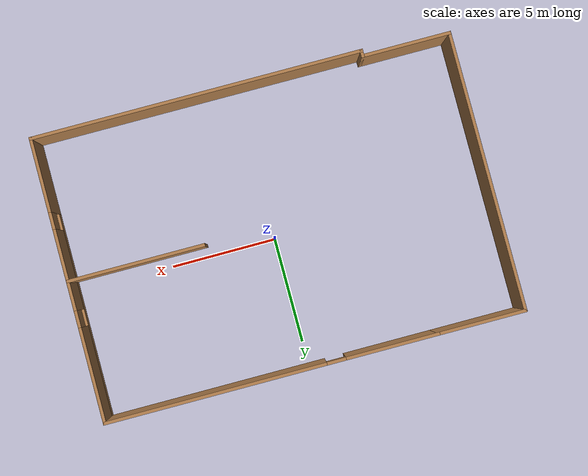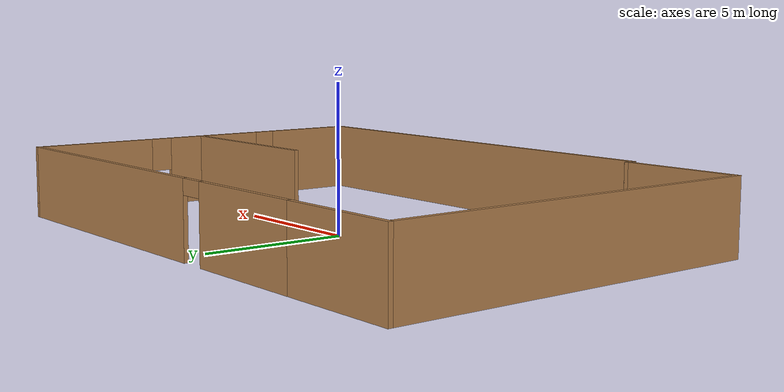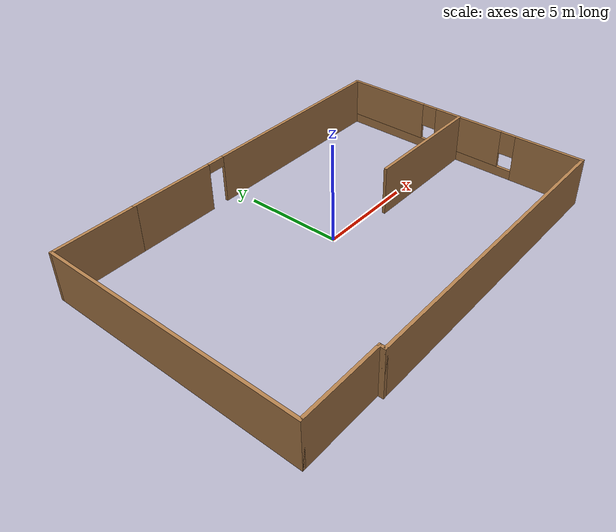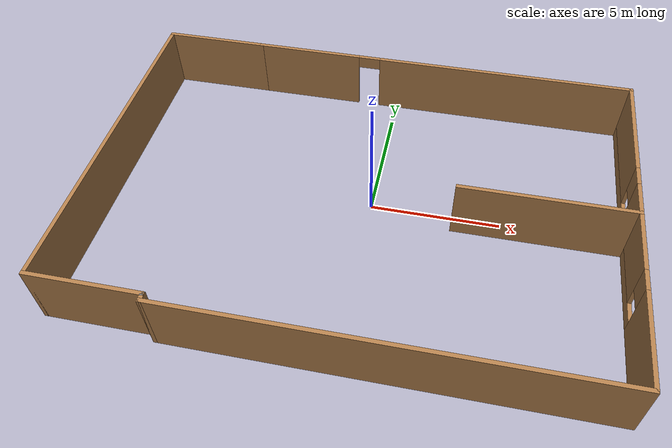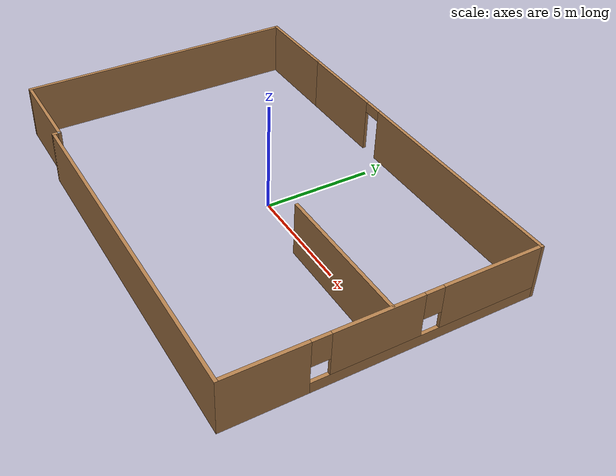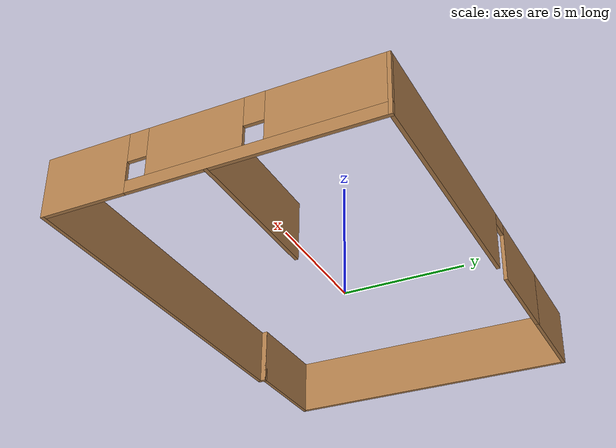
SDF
<?xml version='1.0'?>
<sdf version='1.7'>
  <model name='room2'>
    <pose>-0.266014 -0.572927 0 0 -0 0</pose>
    <link name='Wall_0'>
      <collision name='Wall_0_Collision'>
        <geometry>
          <box>
            <size>15.75 0.15 2.5</size>
          </box>
        </geometry>
        <pose>0 0 1.25 0 -0 0</pose>
      </collision>
      <visual name='Wall_0_Visual'>
        <pose>0 0 1.25 0 -0 0</pose>
        <geometry>
          <box>
            <size>15.75 0.15 2.5</size>
          </box>
        </geometry>
        <material>
          <script>
            <uri>file://media/materials/scripts/gazebo.material</uri>
            <name>Gazebo/Wood</name>
          </script>
          <ambient>1 1 1 1</ambient>
        </material>
        <meta>
          <layer>0</layer>
        </meta>
      </visual>
      <pose>2.05 -6.675 0 0 -0 0</pose>
    </link>
    <link name='Wall_1'>
      <pose>9.85 0 0 0 -0 1.5708</pose>
      <visual name='Wall_1_Visual_0'>
        <pose>-4.97454 0 1.25 0 -0 0</pose>
        <geometry>
          <box>
            <size>3.55091 0.15 2.5</size>
          </box>
        </geometry>
        <material>
          <script>
            <uri>file://media/materials/scripts/gazebo.material</uri>
            <name>Gazebo/Wood</name>
          </script>
          <ambient>1 1 1 1</ambient>
        </material>
        <meta>
          <layer>0</layer>
        </meta>
      </visual>
      <collision name='Wall_1_Collision_0'>
        <geometry>
          <box>
            <size>3.55091 0.15 2.5</size>
          </box>
        </geometry>
        <pose>-4.97454 0 1.25 0 -0 0</pose>
      </collision>
      <visual name='Wall_1_Visual_1'>
        <pose>1.77546 0 0.25 0 -0 0</pose>
        <geometry>
          <box>
            <size>9.94909 0.15 0.5</size>
          </box>
        </geometry>
        <material>
          <script>
            <uri>file://media/materials/scripts/gazebo.material</uri>
            <name>Gazebo/Wood</name>
          </script>
          <ambient>1 1 1 1</ambient>
        </material>
        <meta>
          <layer>0</layer>
        </meta>
      </visual>
      <collision name='Wall_1_Collision_1'>
        <geometry>
          <box>
            <size>9.94909 0.15 0.5</size>
          </box>
        </geometry>
        <pose>1.77546 0 0.25 0 -0 0</pose>
      </collision>
      <visual name='Wall_1_Visual_2'>
        <pose>-0.489522 0 1.5 0 -0 0</pose>
        <geometry>
          <box>
            <size>3.81913 0.15 2</size>
          </box>
        </geometry>
        <material>
          <script>
            <uri>file://media/materials/scripts/gazebo.material</uri>
            <name>Gazebo/Wood</name>
          </script>
          <ambient>1 1 1 1</ambient>
        </material>
        <meta>
          <layer>0</layer>
        </meta>
      </visual>
      <collision name='Wall_1_Collision_2'>
        <geometry>
          <box>
            <size>3.81913 0.15 2</size>
          </box>
        </geometry>
        <pose>-0.489522 0 1.5 0 -0 0</pose>
      </collision>
      <visual name='Wall_1_Visual_3'>
        <pose>4.48502 0 1.5 0 -0 0</pose>
        <geometry>
          <box>
            <size>4.52996 0.15 2</size>
          </box>
        </geometry>
        <material>
          <script>
            <uri>file://media/materials/scripts/gazebo.material</uri>
            <name>Gazebo/Wood</name>
          </script>
          <ambient>1 1 1 1</ambient>
        </material>
        <meta>
          <layer>0</layer>
        </meta>
      </visual>
      <collision name='Wall_1_Collision_3'>
        <geometry>
          <box>
            <size>4.52996 0.15 2</size>
          </box>
        </geometry>
        <pose>4.48502 0 1.5 0 -0 0</pose>
      </collision>
      <visual name='Wall_1_Visual_4'>
        <pose>-2.79908 0 1.9 0 -0 0</pose>
        <geometry>
          <box>
            <size>0.8 0.15 1.2</size>
          </box>
        </geometry>
        <material>
          <script>
            <uri>file://media/materials/scripts/gazebo.material</uri>
            <name>Gazebo/Wood</name>
          </script>
          <ambient>1 1 1 1</ambient>
        </material>
        <meta>
          <layer>0</layer>
        </meta>
      </visual>
      <collision name='Wall_1_Collision_4'>
        <geometry>
          <box>
            <size>0.8 0.15 1.2</size>
          </box>
        </geometry>
        <pose>-2.79908 0 1.9 0 -0 0</pose>
      </collision>
      <visual name='Wall_1_Visual_5'>
        <pose>1.82004 0 1.9 0 -0 0</pose>
        <geometry>
          <box>
            <size>0.8 0.15 1.2</size>
          </box>
        </geometry>
        <material>
          <script>
            <uri>file://media/materials/scripts/gazebo.material</uri>
            <name>Gazebo/Wood</name>
          </script>
          <ambient>1 1 1 1</ambient>
        </material>
        <meta>
          <layer>0</layer>
        </meta>
      </visual>
      <collision name='Wall_1_Collision_5'>
        <geometry>
          <box>
            <size>0.8 0.15 1.2</size>
          </box>
        </geometry>
        <pose>1.82004 0 1.9 0 -0 0</pose>
      </collision>
    </link>
    <link name='Wall_10'>
      <collision name='Wall_10_Collision'>
        <geometry>
          <box>
            <size>0.4 0.15 2.5</size>
          </box>
        </geometry>
        <pose>0 0 1.25 0 -0 0</pose>
      </collision>
      <visual name='Wall_10_Visual'>
        <pose>0 0 1.25 0 -0 0</pose>
        <geometry>
          <box>
            <size>0.4 0.15 2.5</size>
          </box>
        </geometry>
        <material>
          <script>
            <uri>file://media/materials/scripts/gazebo.material</uri>
            <name>Gazebo/Wood</name>
          </script>
          <ambient>1 1 1 1</ambient>
        </material>
        <meta>
          <layer>0</layer>
        </meta>
      </visual>
      <pose>-5.75 -6.55 0 0 -0 -1.5708</pose>
    </link>
    <link name='Wall_16'>
      <collision name='Wall_16_Collision'>
        <geometry>
          <box>
            <size>6.5 0.15 2.5</size>
          </box>
        </geometry>
        <pose>0 0 1.25 0 -0 0</pose>
      </collision>
      <visual name='Wall_16_Visual'>
        <pose>0 0 1.25 0 -0 0</pose>
        <geometry>
          <box>
            <size>6.5 0.15 2.5</size>
          </box>
        </geometry>
        <material>
          <script>
            <uri>file://media/materials/scripts/gazebo.material</uri>
            <name>Gazebo/Wood</name>
          </script>
          <ambient>1 1 1 1</ambient>
        </material>
        <meta>
          <layer>0</layer>
        </meta>
      </visual>
      <pose>6.66894 0.045807 0 0 -0 3.14159</pose>
    </link>
    <link name='Wall_2'>
      <pose>2.05 6.675 0 0 -0 3.14159</pose>
      <visual name='Wall_2_Visual_0'>
        <pose>-2.645 0 1.25 0 -0 0</pose>
        <geometry>
          <box>
            <size>10.46 0.15 2.5</size>
          </box>
        </geometry>
        <material>
          <script>
            <uri>file://media/materials/scripts/gazebo.material</uri>
            <name>Gazebo/Wood</name>
          </script>
          <ambient>1 1 1 1</ambient>
        </material>
        <meta>
          <layer>0</layer>
        </meta>
      </visual>
      <collision name='Wall_2_Collision_0'>
        <geometry>
          <box>
            <size>10.46 0.15 2.5</size>
          </box>
        </geometry>
        <pose>-2.645 0 1.25 0 -0 0</pose>
      </collision>
      <visual name='Wall_2_Visual_1'>
        <pose>5.68 0 1.25 0 -0 0</pose>
        <geometry>
          <box>
            <size>4.39 0.15 2.5</size>
          </box>
        </geometry>
        <material>
          <script>
            <uri>file://media/materials/scripts/gazebo.material</uri>
            <name>Gazebo/Wood</name>
          </script>
          <ambient>1 1 1 1</ambient>
        </material>
        <meta>
          <layer>0</layer>
        </meta>
      </visual>
      <collision name='Wall_2_Collision_1'>
        <geometry>
          <box>
            <size>4.39 0.15 2.5</size>
          </box>
        </geometry>
        <pose>5.68 0 1.25 0 -0 0</pose>
      </collision>
      <visual name='Wall_2_Visual_2'>
        <pose>3.035 0 2.25 0 -0 0</pose>
        <geometry>
          <box>
            <size>0.9 0.15 0.5</size>
          </box>
        </geometry>
        <material>
          <script>
            <uri>file://media/materials/scripts/gazebo.material</uri>
            <name>Gazebo/Wood</name>
          </script>
          <ambient>1 1 1 1</ambient>
        </material>
        <meta>
          <layer>0</layer>
        </meta>
      </visual>
      <collision name='Wall_2_Collision_2'>
        <geometry>
          <box>
            <size>0.9 0.15 0.5</size>
          </box>
        </geometry>
        <pose>3.035 0 2.25 0 -0 0</pose>
      </collision>
    </link>
    <link name='Wall_6'>
      <collision name='Wall_6_Collision'>
        <geometry>
          <box>
            <size>4.25 0.15 2.5</size>
          </box>
        </geometry>
        <pose>0 0 1.25 0 -0 0</pose>
      </collision>
      <visual name='Wall_6_Visual'>
        <pose>0 0 1.25 0 -0 0</pose>
        <geometry>
          <box>
            <size>4.25 0.15 2.5</size>
          </box>
        </geometry>
        <material>
          <script>
            <uri>file://media/materials/scripts/gazebo.material</uri>
            <name>Gazebo/Wood</name>
          </script>
          <ambient>1 1 1 1</ambient>
        </material>
        <meta>
          <layer>0</layer>
        </meta>
      </visual>
      <pose>-7.8 6.675 0 0 -0 3.14159</pose>
    </link>
    <link name='Wall_7'>
      <collision name='Wall_7_Collision'>
        <geometry>
          <box>
            <size>13.25 0.15 2.5</size>
          </box>
        </geometry>
        <pose>0 0 1.25 0 -0 0</pose>
      </collision>
      <visual name='Wall_7_Visual'>
        <pose>0 0 1.25 0 -0 0</pose>
        <geometry>
          <box>
            <size>13.25 0.15 2.5</size>
          </box>
        </geometry>
        <material>
          <script>
            <uri>file://media/materials/scripts/gazebo.material</uri>
            <name>Gazebo/Wood</name>
          </script>
          <ambient>1 1 1 1</ambient>
        </material>
        <meta>
          <layer>0</layer>
        </meta>
      </visual>
      <pose>-9.85 0.125 0 0 -0 -1.5708</pose>
    </link>
    <link name='Wall_8'>
      <collision name='Wall_8_Collision'>
        <geometry>
          <box>
            <size>4.25 0.15 2.5</size>
          </box>
        </geometry>
        <pose>0 0 1.25 0 -0 0</pose>
      </collision>
      <visual name='Wall_8_Visual'>
        <pose>0 0 1.25 0 -0 0</pose>
        <geometry>
          <box>
            <size>4.25 0.15 2.5</size>
          </box>
        </geometry>
        <material>
          <script>
            <uri>file://media/materials/scripts/gazebo.material</uri>
            <name>Gazebo/Wood</name>
          </script>
          <ambient>1 1 1 1</ambient>
        </material>
        <meta>
          <layer>0</layer>
        </meta>
      </visual>
      <pose>-7.8 -6.425 0 0 -0 0</pose>
    </link>
    <link name='Wall_9'>
      <collision name='Wall_9_Collision'>
        <geometry>
          <box>
            <size>0.15 0.15 2.5</size>
          </box>
        </geometry>
        <pose>0 0 1.25 0 -0 0</pose>
      </collision>
      <visual name='Wall_9_Visual'>
        <pose>0 0 1.25 0 -0 0</pose>
        <geometry>
          <box>
            <size>0.15 0.15 2.5</size>
          </box>
        </geometry>
        <material>
          <script>
            <uri>file://media/materials/scripts/gazebo.material</uri>
            <name>Gazebo/Grey</name>
          </script>
          <ambient>1 1 1 1</ambient>
        </material>
        <meta>
          <layer>0</layer>
        </meta>
      </visual>
      <pose>-5.75 -6.425 0 0 -0 0</pose>
    </link>
    <static>1</static>
  </model>
</sdf>
